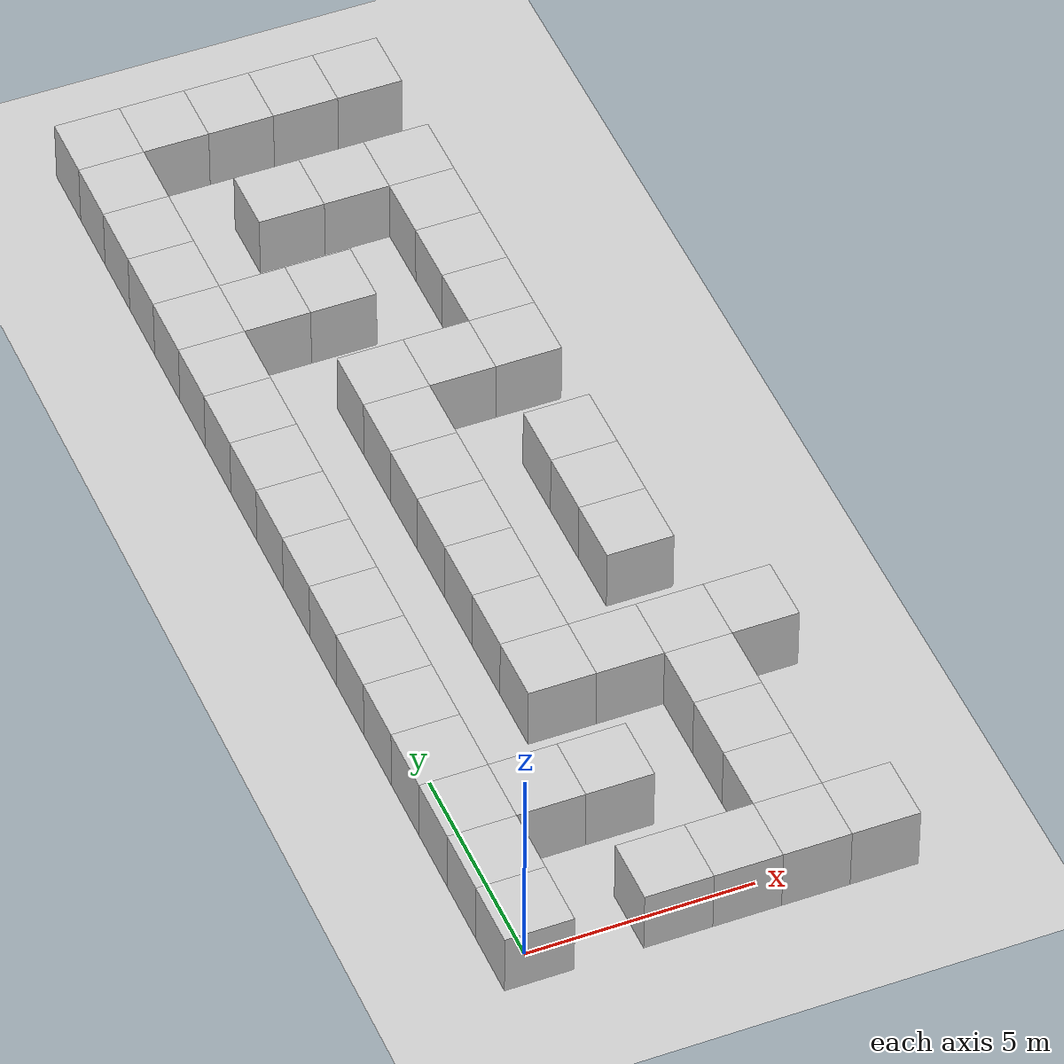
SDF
<sdf version="1.9">
 <world name="maze_world">
  <include><uri>https://fuel.gazebosim.org/1.0/OpenRobotics/models/Sun</uri></include>
  <include><uri>https://fuel.gazebosim.org/1.0/OpenRobotics/models/Ground Plane</uri></include>
  <model name="wall_0_0">
   <static>true</static>
   <pose>0 0 0.75 0 0 0</pose>
   <link name="link">
    <collision name="collision"><geometry><box><size>1.5 1.5 1.5</size></box></geometry></collision>
    <visual name="visual">
     <geometry><box><size>1.5 1.5 1.5</size></box></geometry>
     <material>
      <ambient>0.8 0.8 0.8 1</ambient>
      <diffuse>0.8 0.8 0.8 1</diffuse>
      <pbr>
       <metal>
        <albedo_map>file:///home/max/Repos/DHBW-Robotik/maze_runner_ws/src/maze_runner_gazebo/textures/simple_box.png</albedo_map>
        <roughness>0.9</roughness>
       </metal>
      </pbr>
     </material>
    </visual>
   </link>
  </model>
  <model name="wall_2_0">
   <static>true</static>
   <pose>3 0 0.75 0 0 0</pose>
   <link name="link">
    <collision name="collision"><geometry><box><size>1.5 1.5 1.5</size></box></geometry></collision>
    <visual name="visual">
     <geometry><box><size>1.5 1.5 1.5</size></box></geometry>
     <material>
      <ambient>0.8 0.8 0.8 1</ambient>
      <diffuse>0.8 0.8 0.8 1</diffuse>
      <pbr>
       <metal>
        <albedo_map>file:///home/max/Repos/DHBW-Robotik/maze_runner_ws/src/maze_runner_gazebo/textures/simple_box.png</albedo_map>
        <roughness>0.9</roughness>
       </metal>
      </pbr>
     </material>
    </visual>
   </link>
  </model>
  <model name="wall_3_0">
   <static>true</static>
   <pose>4.5 0 0.75 0 0 0</pose>
   <link name="link">
    <collision name="collision"><geometry><box><size>1.5 1.5 1.5</size></box></geometry></collision>
    <visual name="visual">
     <geometry><box><size>1.5 1.5 1.5</size></box></geometry>
     <material>
      <ambient>0.8 0.8 0.8 1</ambient>
      <diffuse>0.8 0.8 0.8 1</diffuse>
      <pbr>
       <metal>
        <albedo_map>file:///home/max/Repos/DHBW-Robotik/maze_runner_ws/src/maze_runner_gazebo/textures/simple_box.png</albedo_map>
        <roughness>0.9</roughness>
       </metal>
      </pbr>
     </material>
    </visual>
   </link>
  </model>
  <model name="wall_4_0">
   <static>true</static>
   <pose>6 0 0.75 0 0 0</pose>
   <link name="link">
    <collision name="collision"><geometry><box><size>1.5 1.5 1.5</size></box></geometry></collision>
    <visual name="visual">
     <geometry><box><size>1.5 1.5 1.5</size></box></geometry>
     <material>
      <ambient>0.8 0.8 0.8 1</ambient>
      <diffuse>0.8 0.8 0.8 1</diffuse>
      <pbr>
       <metal>
        <albedo_map>file:///home/max/Repos/DHBW-Robotik/maze_runner_ws/src/maze_runner_gazebo/textures/simple_box.png</albedo_map>
        <roughness>0.9</roughness>
       </metal>
      </pbr>
     </material>
    </visual>
   </link>
  </model>
  <model name="wall_5_0">
   <static>true</static>
   <pose>7.5 0 0.75 0 0 0</pose>
   <link name="link">
    <collision name="collision"><geometry><box><size>1.5 1.5 1.5</size></box></geometry></collision>
    <visual name="visual">
     <geometry><box><size>1.5 1.5 1.5</size></box></geometry>
     <material>
      <ambient>0.8 0.8 0.8 1</ambient>
      <diffuse>0.8 0.8 0.8 1</diffuse>
      <pbr>
       <metal>
        <albedo_map>file:///home/max/Repos/DHBW-Robotik/maze_runner_ws/src/maze_runner_gazebo/textures/simple_box.png</albedo_map>
        <roughness>0.9</roughness>
       </metal>
      </pbr>
     </material>
    </visual>
   </link>
  </model>
  <model name="wall_0_1">
   <static>true</static>
   <pose>0 1.5 0.75 0 0 0</pose>
   <link name="link">
    <collision name="collision"><geometry><box><size>1.5 1.5 1.5</size></box></geometry></collision>
    <visual name="visual">
     <geometry><box><size>1.5 1.5 1.5</size></box></geometry>
     <material>
      <ambient>0.8 0.8 0.8 1</ambient>
      <diffuse>0.8 0.8 0.8 1</diffuse>
      <pbr>
       <metal>
        <albedo_map>file:///home/max/Repos/DHBW-Robotik/maze_runner_ws/src/maze_runner_gazebo/textures/simple_box.png</albedo_map>
        <roughness>0.9</roughness>
       </metal>
      </pbr>
     </material>
    </visual>
   </link>
  </model>
  <model name="wall_4_1">
   <static>true</static>
   <pose>6 1.5 0.75 0 0 0</pose>
   <link name="link">
    <collision name="collision"><geometry><box><size>1.5 1.5 1.5</size></box></geometry></collision>
    <visual name="visual">
     <geometry><box><size>1.5 1.5 1.5</size></box></geometry>
     <material>
      <ambient>0.8 0.8 0.8 1</ambient>
      <diffuse>0.8 0.8 0.8 1</diffuse>
      <pbr>
       <metal>
        <albedo_map>file:///home/max/Repos/DHBW-Robotik/maze_runner_ws/src/maze_runner_gazebo/textures/simple_box.png</albedo_map>
        <roughness>0.9</roughness>
       </metal>
      </pbr>
     </material>
    </visual>
   </link>
  </model>
  <model name="wall_0_2">
   <static>true</static>
   <pose>0 3 0.75 0 0 0</pose>
   <link name="link">
    <collision name="collision"><geometry><box><size>1.5 1.5 1.5</size></box></geometry></collision>
    <visual name="visual">
     <geometry><box><size>1.5 1.5 1.5</size></box></geometry>
     <material>
      <ambient>0.8 0.8 0.8 1</ambient>
      <diffuse>0.8 0.8 0.8 1</diffuse>
      <pbr>
       <metal>
        <albedo_map>file:///home/max/Repos/DHBW-Robotik/maze_runner_ws/src/maze_runner_gazebo/textures/simple_box.png</albedo_map>
        <roughness>0.9</roughness>
       </metal>
      </pbr>
     </material>
    </visual>
   </link>
  </model>
  <model name="wall_1_2">
   <static>true</static>
   <pose>1.5 3 0.75 0 0 0</pose>
   <link name="link">
    <collision name="collision"><geometry><box><size>1.5 1.5 1.5</size></box></geometry></collision>
    <visual name="visual">
     <geometry><box><size>1.5 1.5 1.5</size></box></geometry>
     <material>
      <ambient>0.8 0.8 0.8 1</ambient>
      <diffuse>0.8 0.8 0.8 1</diffuse>
      <pbr>
       <metal>
        <albedo_map>file:///home/max/Repos/DHBW-Robotik/maze_runner_ws/src/maze_runner_gazebo/textures/simple_box.png</albedo_map>
        <roughness>0.9</roughness>
       </metal>
      </pbr>
     </material>
    </visual>
   </link>
  </model>
  <model name="wall_2_2">
   <static>true</static>
   <pose>3 3 0.75 0 0 0</pose>
   <link name="link">
    <collision name="collision"><geometry><box><size>1.5 1.5 1.5</size></box></geometry></collision>
    <visual name="visual">
     <geometry><box><size>1.5 1.5 1.5</size></box></geometry>
     <material>
      <ambient>0.8 0.8 0.8 1</ambient>
      <diffuse>0.8 0.8 0.8 1</diffuse>
      <pbr>
       <metal>
        <albedo_map>file:///home/max/Repos/DHBW-Robotik/maze_runner_ws/src/maze_runner_gazebo/textures/simple_box.png</albedo_map>
        <roughness>0.9</roughness>
       </metal>
      </pbr>
     </material>
    </visual>
   </link>
  </model>
  <model name="wall_4_2">
   <static>true</static>
   <pose>6 3 0.75 0 0 0</pose>
   <link name="link">
    <collision name="collision"><geometry><box><size>1.5 1.5 1.5</size></box></geometry></collision>
    <visual name="visual">
     <geometry><box><size>1.5 1.5 1.5</size></box></geometry>
     <material>
      <ambient>0.8 0.8 0.8 1</ambient>
      <diffuse>0.8 0.8 0.8 1</diffuse>
      <pbr>
       <metal>
        <albedo_map>file:///home/max/Repos/DHBW-Robotik/maze_runner_ws/src/maze_runner_gazebo/textures/simple_box.png</albedo_map>
        <roughness>0.9</roughness>
       </metal>
      </pbr>
     </material>
    </visual>
   </link>
  </model>
  <model name="wall_0_3">
   <static>true</static>
   <pose>0 4.5 0.75 0 0 0</pose>
   <link name="link">
    <collision name="collision"><geometry><box><size>1.5 1.5 1.5</size></box></geometry></collision>
    <visual name="visual">
     <geometry><box><size>1.5 1.5 1.5</size></box></geometry>
     <material>
      <ambient>0.8 0.8 0.8 1</ambient>
      <diffuse>0.8 0.8 0.8 1</diffuse>
      <pbr>
       <metal>
        <albedo_map>file:///home/max/Repos/DHBW-Robotik/maze_runner_ws/src/maze_runner_gazebo/textures/simple_box.png</albedo_map>
        <roughness>0.9</roughness>
       </metal>
      </pbr>
     </material>
    </visual>
   </link>
  </model>
  <model name="wall_4_3">
   <static>true</static>
   <pose>6 4.5 0.75 0 0 0</pose>
   <link name="link">
    <collision name="collision"><geometry><box><size>1.5 1.5 1.5</size></box></geometry></collision>
    <visual name="visual">
     <geometry><box><size>1.5 1.5 1.5</size></box></geometry>
     <material>
      <ambient>0.8 0.8 0.8 1</ambient>
      <diffuse>0.8 0.8 0.8 1</diffuse>
      <pbr>
       <metal>
        <albedo_map>file:///home/max/Repos/DHBW-Robotik/maze_runner_ws/src/maze_runner_gazebo/textures/simple_box.png</albedo_map>
        <roughness>0.9</roughness>
       </metal>
      </pbr>
     </material>
    </visual>
   </link>
  </model>
  <model name="wall_0_4">
   <static>true</static>
   <pose>0 6 0.75 0 0 0</pose>
   <link name="link">
    <collision name="collision"><geometry><box><size>1.5 1.5 1.5</size></box></geometry></collision>
    <visual name="visual">
     <geometry><box><size>1.5 1.5 1.5</size></box></geometry>
     <material>
      <ambient>0.8 0.8 0.8 1</ambient>
      <diffuse>0.8 0.8 0.8 1</diffuse>
      <pbr>
       <metal>
        <albedo_map>file:///home/max/Repos/DHBW-Robotik/maze_runner_ws/src/maze_runner_gazebo/textures/simple_box.png</albedo_map>
        <roughness>0.9</roughness>
       </metal>
      </pbr>
     </material>
    </visual>
   </link>
  </model>
  <model name="wall_2_4">
   <static>true</static>
   <pose>3 6 0.75 0 0 0</pose>
   <link name="link">
    <collision name="collision"><geometry><box><size>1.5 1.5 1.5</size></box></geometry></collision>
    <visual name="visual">
     <geometry><box><size>1.5 1.5 1.5</size></box></geometry>
     <material>
      <ambient>0.8 0.8 0.8 1</ambient>
      <diffuse>0.8 0.8 0.8 1</diffuse>
      <pbr>
       <metal>
        <albedo_map>file:///home/max/Repos/DHBW-Robotik/maze_runner_ws/src/maze_runner_gazebo/textures/simple_box.png</albedo_map>
        <roughness>0.9</roughness>
       </metal>
      </pbr>
     </material>
    </visual>
   </link>
  </model>
  <model name="wall_3_4">
   <static>true</static>
   <pose>4.5 6 0.75 0 0 0</pose>
   <link name="link">
    <collision name="collision"><geometry><box><size>1.5 1.5 1.5</size></box></geometry></collision>
    <visual name="visual">
     <geometry><box><size>1.5 1.5 1.5</size></box></geometry>
     <material>
      <ambient>0.8 0.8 0.8 1</ambient>
      <diffuse>0.8 0.8 0.8 1</diffuse>
      <pbr>
       <metal>
        <albedo_map>file:///home/max/Repos/DHBW-Robotik/maze_runner_ws/src/maze_runner_gazebo/textures/simple_box.png</albedo_map>
        <roughness>0.9</roughness>
       </metal>
      </pbr>
     </material>
    </visual>
   </link>
  </model>
  <model name="wall_4_4">
   <static>true</static>
   <pose>6 6 0.75 0 0 0</pose>
   <link name="link">
    <collision name="collision"><geometry><box><size>1.5 1.5 1.5</size></box></geometry></collision>
    <visual name="visual">
     <geometry><box><size>1.5 1.5 1.5</size></box></geometry>
     <material>
      <ambient>0.8 0.8 0.8 1</ambient>
      <diffuse>0.8 0.8 0.8 1</diffuse>
      <pbr>
       <metal>
        <albedo_map>file:///home/max/Repos/DHBW-Robotik/maze_runner_ws/src/maze_runner_gazebo/textures/simple_box.png</albedo_map>
        <roughness>0.9</roughness>
       </metal>
      </pbr>
     </material>
    </visual>
   </link>
  </model>
  <model name="wall_5_4">
   <static>true</static>
   <pose>7.5 6 0.75 0 0 0</pose>
   <link name="link">
    <collision name="collision"><geometry><box><size>1.5 1.5 1.5</size></box></geometry></collision>
    <visual name="visual">
     <geometry><box><size>1.5 1.5 1.5</size></box></geometry>
     <material>
      <ambient>0.8 0.8 0.8 1</ambient>
      <diffuse>0.8 0.8 0.8 1</diffuse>
      <pbr>
       <metal>
        <albedo_map>file:///home/max/Repos/DHBW-Robotik/maze_runner_ws/src/maze_runner_gazebo/textures/simple_box.png</albedo_map>
        <roughness>0.9</roughness>
       </metal>
      </pbr>
     </material>
    </visual>
   </link>
  </model>
  <model name="wall_0_5">
   <static>true</static>
   <pose>0 7.5 0.75 0 0 0</pose>
   <link name="link">
    <collision name="collision"><geometry><box><size>1.5 1.5 1.5</size></box></geometry></collision>
    <visual name="visual">
     <geometry><box><size>1.5 1.5 1.5</size></box></geometry>
     <material>
      <ambient>0.8 0.8 0.8 1</ambient>
      <diffuse>0.8 0.8 0.8 1</diffuse>
      <pbr>
       <metal>
        <albedo_map>file:///home/max/Repos/DHBW-Robotik/maze_runner_ws/src/maze_runner_gazebo/textures/simple_box.png</albedo_map>
        <roughness>0.9</roughness>
       </metal>
      </pbr>
     </material>
    </visual>
   </link>
  </model>
  <model name="wall_2_5">
   <static>true</static>
   <pose>3 7.5 0.75 0 0 0</pose>
   <link name="link">
    <collision name="collision"><geometry><box><size>1.5 1.5 1.5</size></box></geometry></collision>
    <visual name="visual">
     <geometry><box><size>1.5 1.5 1.5</size></box></geometry>
     <material>
      <ambient>0.8 0.8 0.8 1</ambient>
      <diffuse>0.8 0.8 0.8 1</diffuse>
      <pbr>
       <metal>
        <albedo_map>file:///home/max/Repos/DHBW-Robotik/maze_runner_ws/src/maze_runner_gazebo/textures/simple_box.png</albedo_map>
        <roughness>0.9</roughness>
       </metal>
      </pbr>
     </material>
    </visual>
   </link>
  </model>
  <model name="wall_0_6">
   <static>true</static>
   <pose>0 9 0.75 0 0 0</pose>
   <link name="link">
    <collision name="collision"><geometry><box><size>1.5 1.5 1.5</size></box></geometry></collision>
    <visual name="visual">
     <geometry><box><size>1.5 1.5 1.5</size></box></geometry>
     <material>
      <ambient>0.8 0.8 0.8 1</ambient>
      <diffuse>0.8 0.8 0.8 1</diffuse>
      <pbr>
       <metal>
        <albedo_map>file:///home/max/Repos/DHBW-Robotik/maze_runner_ws/src/maze_runner_gazebo/textures/simple_box.png</albedo_map>
        <roughness>0.9</roughness>
       </metal>
      </pbr>
     </material>
    </visual>
   </link>
  </model>
  <model name="wall_2_6">
   <static>true</static>
   <pose>3 9 0.75 0 0 0</pose>
   <link name="link">
    <collision name="collision"><geometry><box><size>1.5 1.5 1.5</size></box></geometry></collision>
    <visual name="visual">
     <geometry><box><size>1.5 1.5 1.5</size></box></geometry>
     <material>
      <ambient>0.8 0.8 0.8 1</ambient>
      <diffuse>0.8 0.8 0.8 1</diffuse>
      <pbr>
       <metal>
        <albedo_map>file:///home/max/Repos/DHBW-Robotik/maze_runner_ws/src/maze_runner_gazebo/textures/simple_box.png</albedo_map>
        <roughness>0.9</roughness>
       </metal>
      </pbr>
     </material>
    </visual>
   </link>
  </model>
  <model name="wall_4_6">
   <static>true</static>
   <pose>6 9 0.75 0 0 0</pose>
   <link name="link">
    <collision name="collision"><geometry><box><size>1.5 1.5 1.5</size></box></geometry></collision>
    <visual name="visual">
     <geometry><box><size>1.5 1.5 1.5</size></box></geometry>
     <material>
      <ambient>0.8 0.8 0.8 1</ambient>
      <diffuse>0.8 0.8 0.8 1</diffuse>
      <pbr>
       <metal>
        <albedo_map>file:///home/max/Repos/DHBW-Robotik/maze_runner_ws/src/maze_runner_gazebo/textures/simple_box.png</albedo_map>
        <roughness>0.9</roughness>
       </metal>
      </pbr>
     </material>
    </visual>
   </link>
  </model>
  <model name="wall_0_7">
   <static>true</static>
   <pose>0 10.5 0.75 0 0 0</pose>
   <link name="link">
    <collision name="collision"><geometry><box><size>1.5 1.5 1.5</size></box></geometry></collision>
    <visual name="visual">
     <geometry><box><size>1.5 1.5 1.5</size></box></geometry>
     <material>
      <ambient>0.8 0.8 0.8 1</ambient>
      <diffuse>0.8 0.8 0.8 1</diffuse>
      <pbr>
       <metal>
        <albedo_map>file:///home/max/Repos/DHBW-Robotik/maze_runner_ws/src/maze_runner_gazebo/textures/simple_box.png</albedo_map>
        <roughness>0.9</roughness>
       </metal>
      </pbr>
     </material>
    </visual>
   </link>
  </model>
  <model name="wall_2_7">
   <static>true</static>
   <pose>3 10.5 0.75 0 0 0</pose>
   <link name="link">
    <collision name="collision"><geometry><box><size>1.5 1.5 1.5</size></box></geometry></collision>
    <visual name="visual">
     <geometry><box><size>1.5 1.5 1.5</size></box></geometry>
     <material>
      <ambient>0.8 0.8 0.8 1</ambient>
      <diffuse>0.8 0.8 0.8 1</diffuse>
      <pbr>
       <metal>
        <albedo_map>file:///home/max/Repos/DHBW-Robotik/maze_runner_ws/src/maze_runner_gazebo/textures/simple_box.png</albedo_map>
        <roughness>0.9</roughness>
       </metal>
      </pbr>
     </material>
    </visual>
   </link>
  </model>
  <model name="wall_4_7">
   <static>true</static>
   <pose>6 10.5 0.75 0 0 0</pose>
   <link name="link">
    <collision name="collision"><geometry><box><size>1.5 1.5 1.5</size></box></geometry></collision>
    <visual name="visual">
     <geometry><box><size>1.5 1.5 1.5</size></box></geometry>
     <material>
      <ambient>0.8 0.8 0.8 1</ambient>
      <diffuse>0.8 0.8 0.8 1</diffuse>
      <pbr>
       <metal>
        <albedo_map>file:///home/max/Repos/DHBW-Robotik/maze_runner_ws/src/maze_runner_gazebo/textures/simple_box.png</albedo_map>
        <roughness>0.9</roughness>
       </metal>
      </pbr>
     </material>
    </visual>
   </link>
  </model>
  <model name="wall_0_8">
   <static>true</static>
   <pose>0 12 0.75 0 0 0</pose>
   <link name="link">
    <collision name="collision"><geometry><box><size>1.5 1.5 1.5</size></box></geometry></collision>
    <visual name="visual">
     <geometry><box><size>1.5 1.5 1.5</size></box></geometry>
     <material>
      <ambient>0.8 0.8 0.8 1</ambient>
      <diffuse>0.8 0.8 0.8 1</diffuse>
      <pbr>
       <metal>
        <albedo_map>file:///home/max/Repos/DHBW-Robotik/maze_runner_ws/src/maze_runner_gazebo/textures/simple_box.png</albedo_map>
        <roughness>0.9</roughness>
       </metal>
      </pbr>
     </material>
    </visual>
   </link>
  </model>
  <model name="wall_2_8">
   <static>true</static>
   <pose>3 12 0.75 0 0 0</pose>
   <link name="link">
    <collision name="collision"><geometry><box><size>1.5 1.5 1.5</size></box></geometry></collision>
    <visual name="visual">
     <geometry><box><size>1.5 1.5 1.5</size></box></geometry>
     <material>
      <ambient>0.8 0.8 0.8 1</ambient>
      <diffuse>0.8 0.8 0.8 1</diffuse>
      <pbr>
       <metal>
        <albedo_map>file:///home/max/Repos/DHBW-Robotik/maze_runner_ws/src/maze_runner_gazebo/textures/simple_box.png</albedo_map>
        <roughness>0.9</roughness>
       </metal>
      </pbr>
     </material>
    </visual>
   </link>
  </model>
  <model name="wall_4_8">
   <static>true</static>
   <pose>6 12 0.75 0 0 0</pose>
   <link name="link">
    <collision name="collision"><geometry><box><size>1.5 1.5 1.5</size></box></geometry></collision>
    <visual name="visual">
     <geometry><box><size>1.5 1.5 1.5</size></box></geometry>
     <material>
      <ambient>0.8 0.8 0.8 1</ambient>
      <diffuse>0.8 0.8 0.8 1</diffuse>
      <pbr>
       <metal>
        <albedo_map>file:///home/max/Repos/DHBW-Robotik/maze_runner_ws/src/maze_runner_gazebo/textures/simple_box.png</albedo_map>
        <roughness>0.9</roughness>
       </metal>
      </pbr>
     </material>
    </visual>
   </link>
  </model>
  <model name="wall_0_9">
   <static>true</static>
   <pose>0 13.5 0.75 0 0 0</pose>
   <link name="link">
    <collision name="collision"><geometry><box><size>1.5 1.5 1.5</size></box></geometry></collision>
    <visual name="visual">
     <geometry><box><size>1.5 1.5 1.5</size></box></geometry>
     <material>
      <ambient>0.8 0.8 0.8 1</ambient>
      <diffuse>0.8 0.8 0.8 1</diffuse>
      <pbr>
       <metal>
        <albedo_map>file:///home/max/Repos/DHBW-Robotik/maze_runner_ws/src/maze_runner_gazebo/textures/simple_box.png</albedo_map>
        <roughness>0.9</roughness>
       </metal>
      </pbr>
     </material>
    </visual>
   </link>
  </model>
  <model name="wall_2_9">
   <static>true</static>
   <pose>3 13.5 0.75 0 0 0</pose>
   <link name="link">
    <collision name="collision"><geometry><box><size>1.5 1.5 1.5</size></box></geometry></collision>
    <visual name="visual">
     <geometry><box><size>1.5 1.5 1.5</size></box></geometry>
     <material>
      <ambient>0.8 0.8 0.8 1</ambient>
      <diffuse>0.8 0.8 0.8 1</diffuse>
      <pbr>
       <metal>
        <albedo_map>file:///home/max/Repos/DHBW-Robotik/maze_runner_ws/src/maze_runner_gazebo/textures/simple_box.png</albedo_map>
        <roughness>0.9</roughness>
       </metal>
      </pbr>
     </material>
    </visual>
   </link>
  </model>
  <model name="wall_0_10">
   <static>true</static>
   <pose>0 15 0.75 0 0 0</pose>
   <link name="link">
    <collision name="collision"><geometry><box><size>1.5 1.5 1.5</size></box></geometry></collision>
    <visual name="visual">
     <geometry><box><size>1.5 1.5 1.5</size></box></geometry>
     <material>
      <ambient>0.8 0.8 0.8 1</ambient>
      <diffuse>0.8 0.8 0.8 1</diffuse>
      <pbr>
       <metal>
        <albedo_map>file:///home/max/Repos/DHBW-Robotik/maze_runner_ws/src/maze_runner_gazebo/textures/simple_box.png</albedo_map>
        <roughness>0.9</roughness>
       </metal>
      </pbr>
     </material>
    </visual>
   </link>
  </model>
  <model name="wall_2_10">
   <static>true</static>
   <pose>3 15 0.75 0 0 0</pose>
   <link name="link">
    <collision name="collision"><geometry><box><size>1.5 1.5 1.5</size></box></geometry></collision>
    <visual name="visual">
     <geometry><box><size>1.5 1.5 1.5</size></box></geometry>
     <material>
      <ambient>0.8 0.8 0.8 1</ambient>
      <diffuse>0.8 0.8 0.8 1</diffuse>
      <pbr>
       <metal>
        <albedo_map>file:///home/max/Repos/DHBW-Robotik/maze_runner_ws/src/maze_runner_gazebo/textures/simple_box.png</albedo_map>
        <roughness>0.9</roughness>
       </metal>
      </pbr>
     </material>
    </visual>
   </link>
  </model>
  <model name="wall_3_10">
   <static>true</static>
   <pose>4.5 15 0.75 0 0 0</pose>
   <link name="link">
    <collision name="collision"><geometry><box><size>1.5 1.5 1.5</size></box></geometry></collision>
    <visual name="visual">
     <geometry><box><size>1.5 1.5 1.5</size></box></geometry>
     <material>
      <ambient>0.8 0.8 0.8 1</ambient>
      <diffuse>0.8 0.8 0.8 1</diffuse>
      <pbr>
       <metal>
        <albedo_map>file:///home/max/Repos/DHBW-Robotik/maze_runner_ws/src/maze_runner_gazebo/textures/simple_box.png</albedo_map>
        <roughness>0.9</roughness>
       </metal>
      </pbr>
     </material>
    </visual>
   </link>
  </model>
  <model name="wall_4_10">
   <static>true</static>
   <pose>6 15 0.75 0 0 0</pose>
   <link name="link">
    <collision name="collision"><geometry><box><size>1.5 1.5 1.5</size></box></geometry></collision>
    <visual name="visual">
     <geometry><box><size>1.5 1.5 1.5</size></box></geometry>
     <material>
      <ambient>0.8 0.8 0.8 1</ambient>
      <diffuse>0.8 0.8 0.8 1</diffuse>
      <pbr>
       <metal>
        <albedo_map>file:///home/max/Repos/DHBW-Robotik/maze_runner_ws/src/maze_runner_gazebo/textures/simple_box.png</albedo_map>
        <roughness>0.9</roughness>
       </metal>
      </pbr>
     </material>
    </visual>
   </link>
  </model>
  <model name="wall_0_11">
   <static>true</static>
   <pose>0 16.5 0.75 0 0 0</pose>
   <link name="link">
    <collision name="collision"><geometry><box><size>1.5 1.5 1.5</size></box></geometry></collision>
    <visual name="visual">
     <geometry><box><size>1.5 1.5 1.5</size></box></geometry>
     <material>
      <ambient>0.8 0.8 0.8 1</ambient>
      <diffuse>0.8 0.8 0.8 1</diffuse>
      <pbr>
       <metal>
        <albedo_map>file:///home/max/Repos/DHBW-Robotik/maze_runner_ws/src/maze_runner_gazebo/textures/simple_box.png</albedo_map>
        <roughness>0.9</roughness>
       </metal>
      </pbr>
     </material>
    </visual>
   </link>
  </model>
  <model name="wall_4_11">
   <static>true</static>
   <pose>6 16.5 0.75 0 0 0</pose>
   <link name="link">
    <collision name="collision"><geometry><box><size>1.5 1.5 1.5</size></box></geometry></collision>
    <visual name="visual">
     <geometry><box><size>1.5 1.5 1.5</size></box></geometry>
     <material>
      <ambient>0.8 0.8 0.8 1</ambient>
      <diffuse>0.8 0.8 0.8 1</diffuse>
      <pbr>
       <metal>
        <albedo_map>file:///home/max/Repos/DHBW-Robotik/maze_runner_ws/src/maze_runner_gazebo/textures/simple_box.png</albedo_map>
        <roughness>0.9</roughness>
       </metal>
      </pbr>
     </material>
    </visual>
   </link>
  </model>
  <model name="wall_0_12">
   <static>true</static>
   <pose>0 18 0.75 0 0 0</pose>
   <link name="link">
    <collision name="collision"><geometry><box><size>1.5 1.5 1.5</size></box></geometry></collision>
    <visual name="visual">
     <geometry><box><size>1.5 1.5 1.5</size></box></geometry>
     <material>
      <ambient>0.8 0.8 0.8 1</ambient>
      <diffuse>0.8 0.8 0.8 1</diffuse>
      <pbr>
       <metal>
        <albedo_map>file:///home/max/Repos/DHBW-Robotik/maze_runner_ws/src/maze_runner_gazebo/textures/simple_box.png</albedo_map>
        <roughness>0.9</roughness>
       </metal>
      </pbr>
     </material>
    </visual>
   </link>
  </model>
  <model name="wall_1_12">
   <static>true</static>
   <pose>1.5 18 0.75 0 0 0</pose>
   <link name="link">
    <collision name="collision"><geometry><box><size>1.5 1.5 1.5</size></box></geometry></collision>
    <visual name="visual">
     <geometry><box><size>1.5 1.5 1.5</size></box></geometry>
     <material>
      <ambient>0.8 0.8 0.8 1</ambient>
      <diffuse>0.8 0.8 0.8 1</diffuse>
      <pbr>
       <metal>
        <albedo_map>file:///home/max/Repos/DHBW-Robotik/maze_runner_ws/src/maze_runner_gazebo/textures/simple_box.png</albedo_map>
        <roughness>0.9</roughness>
       </metal>
      </pbr>
     </material>
    </visual>
   </link>
  </model>
  <model name="wall_2_12">
   <static>true</static>
   <pose>3 18 0.75 0 0 0</pose>
   <link name="link">
    <collision name="collision"><geometry><box><size>1.5 1.5 1.5</size></box></geometry></collision>
    <visual name="visual">
     <geometry><box><size>1.5 1.5 1.5</size></box></geometry>
     <material>
      <ambient>0.8 0.8 0.8 1</ambient>
      <diffuse>0.8 0.8 0.8 1</diffuse>
      <pbr>
       <metal>
        <albedo_map>file:///home/max/Repos/DHBW-Robotik/maze_runner_ws/src/maze_runner_gazebo/textures/simple_box.png</albedo_map>
        <roughness>0.9</roughness>
       </metal>
      </pbr>
     </material>
    </visual>
   </link>
  </model>
  <model name="wall_4_12">
   <static>true</static>
   <pose>6 18 0.75 0 0 0</pose>
   <link name="link">
    <collision name="collision"><geometry><box><size>1.5 1.5 1.5</size></box></geometry></collision>
    <visual name="visual">
     <geometry><box><size>1.5 1.5 1.5</size></box></geometry>
     <material>
      <ambient>0.8 0.8 0.8 1</ambient>
      <diffuse>0.8 0.8 0.8 1</diffuse>
      <pbr>
       <metal>
        <albedo_map>file:///home/max/Repos/DHBW-Robotik/maze_runner_ws/src/maze_runner_gazebo/textures/simple_box.png</albedo_map>
        <roughness>0.9</roughness>
       </metal>
      </pbr>
     </material>
    </visual>
   </link>
  </model>
  <model name="wall_0_13">
   <static>true</static>
   <pose>0 19.5 0.75 0 0 0</pose>
   <link name="link">
    <collision name="collision"><geometry><box><size>1.5 1.5 1.5</size></box></geometry></collision>
    <visual name="visual">
     <geometry><box><size>1.5 1.5 1.5</size></box></geometry>
     <material>
      <ambient>0.8 0.8 0.8 1</ambient>
      <diffuse>0.8 0.8 0.8 1</diffuse>
      <pbr>
       <metal>
        <albedo_map>file:///home/max/Repos/DHBW-Robotik/maze_runner_ws/src/maze_runner_gazebo/textures/simple_box.png</albedo_map>
        <roughness>0.9</roughness>
       </metal>
      </pbr>
     </material>
    </visual>
   </link>
  </model>
  <model name="wall_4_13">
   <static>true</static>
   <pose>6 19.5 0.75 0 0 0</pose>
   <link name="link">
    <collision name="collision"><geometry><box><size>1.5 1.5 1.5</size></box></geometry></collision>
    <visual name="visual">
     <geometry><box><size>1.5 1.5 1.5</size></box></geometry>
     <material>
      <ambient>0.8 0.8 0.8 1</ambient>
      <diffuse>0.8 0.8 0.8 1</diffuse>
      <pbr>
       <metal>
        <albedo_map>file:///home/max/Repos/DHBW-Robotik/maze_runner_ws/src/maze_runner_gazebo/textures/simple_box.png</albedo_map>
        <roughness>0.9</roughness>
       </metal>
      </pbr>
     </material>
    </visual>
   </link>
  </model>
  <model name="wall_0_14">
   <static>true</static>
   <pose>0 21 0.75 0 0 0</pose>
   <link name="link">
    <collision name="collision"><geometry><box><size>1.5 1.5 1.5</size></box></geometry></collision>
    <visual name="visual">
     <geometry><box><size>1.5 1.5 1.5</size></box></geometry>
     <material>
      <ambient>0.8 0.8 0.8 1</ambient>
      <diffuse>0.8 0.8 0.8 1</diffuse>
      <pbr>
       <metal>
        <albedo_map>file:///home/max/Repos/DHBW-Robotik/maze_runner_ws/src/maze_runner_gazebo/textures/simple_box.png</albedo_map>
        <roughness>0.9</roughness>
       </metal>
      </pbr>
     </material>
    </visual>
   </link>
  </model>
  <model name="wall_2_14">
   <static>true</static>
   <pose>3 21 0.75 0 0 0</pose>
   <link name="link">
    <collision name="collision"><geometry><box><size>1.5 1.5 1.5</size></box></geometry></collision>
    <visual name="visual">
     <geometry><box><size>1.5 1.5 1.5</size></box></geometry>
     <material>
      <ambient>0.8 0.8 0.8 1</ambient>
      <diffuse>0.8 0.8 0.8 1</diffuse>
      <pbr>
       <metal>
        <albedo_map>file:///home/max/Repos/DHBW-Robotik/maze_runner_ws/src/maze_runner_gazebo/textures/simple_box.png</albedo_map>
        <roughness>0.9</roughness>
       </metal>
      </pbr>
     </material>
    </visual>
   </link>
  </model>
  <model name="wall_3_14">
   <static>true</static>
   <pose>4.5 21 0.75 0 0 0</pose>
   <link name="link">
    <collision name="collision"><geometry><box><size>1.5 1.5 1.5</size></box></geometry></collision>
    <visual name="visual">
     <geometry><box><size>1.5 1.5 1.5</size></box></geometry>
     <material>
      <ambient>0.8 0.8 0.8 1</ambient>
      <diffuse>0.8 0.8 0.8 1</diffuse>
      <pbr>
       <metal>
        <albedo_map>file:///home/max/Repos/DHBW-Robotik/maze_runner_ws/src/maze_runner_gazebo/textures/simple_box.png</albedo_map>
        <roughness>0.9</roughness>
       </metal>
      </pbr>
     </material>
    </visual>
   </link>
  </model>
  <model name="wall_4_14">
   <static>true</static>
   <pose>6 21 0.75 0 0 0</pose>
   <link name="link">
    <collision name="collision"><geometry><box><size>1.5 1.5 1.5</size></box></geometry></collision>
    <visual name="visual">
     <geometry><box><size>1.5 1.5 1.5</size></box></geometry>
     <material>
      <ambient>0.8 0.8 0.8 1</ambient>
      <diffuse>0.8 0.8 0.8 1</diffuse>
      <pbr>
       <metal>
        <albedo_map>file:///home/max/Repos/DHBW-Robotik/maze_runner_ws/src/maze_runner_gazebo/textures/simple_box.png</albedo_map>
        <roughness>0.9</roughness>
       </metal>
      </pbr>
     </material>
    </visual>
   </link>
  </model>
  <model name="wall_0_15">
   <static>true</static>
   <pose>0 22.5 0.75 0 0 0</pose>
   <link name="link">
    <collision name="collision"><geometry><box><size>1.5 1.5 1.5</size></box></geometry></collision>
    <visual name="visual">
     <geometry><box><size>1.5 1.5 1.5</size></box></geometry>
     <material>
      <ambient>0.8 0.8 0.8 1</ambient>
      <diffuse>0.8 0.8 0.8 1</diffuse>
      <pbr>
       <metal>
        <albedo_map>file:///home/max/Repos/DHBW-Robotik/maze_runner_ws/src/maze_runner_gazebo/textures/simple_box.png</albedo_map>
        <roughness>0.9</roughness>
       </metal>
      </pbr>
     </material>
    </visual>
   </link>
  </model>
  <model name="wall_0_16">
   <static>true</static>
   <pose>0 24 0.75 0 0 0</pose>
   <link name="link">
    <collision name="collision"><geometry><box><size>1.5 1.5 1.5</size></box></geometry></collision>
    <visual name="visual">
     <geometry><box><size>1.5 1.5 1.5</size></box></geometry>
     <material>
      <ambient>0.8 0.8 0.8 1</ambient>
      <diffuse>0.8 0.8 0.8 1</diffuse>
      <pbr>
       <metal>
        <albedo_map>file:///home/max/Repos/DHBW-Robotik/maze_runner_ws/src/maze_runner_gazebo/textures/simple_box.png</albedo_map>
        <roughness>0.9</roughness>
       </metal>
      </pbr>
     </material>
    </visual>
   </link>
  </model>
  <model name="wall_1_16">
   <static>true</static>
   <pose>1.5 24 0.75 0 0 0</pose>
   <link name="link">
    <collision name="collision"><geometry><box><size>1.5 1.5 1.5</size></box></geometry></collision>
    <visual name="visual">
     <geometry><box><size>1.5 1.5 1.5</size></box></geometry>
     <material>
      <ambient>0.8 0.8 0.8 1</ambient>
      <diffuse>0.8 0.8 0.8 1</diffuse>
      <pbr>
       <metal>
        <albedo_map>file:///home/max/Repos/DHBW-Robotik/maze_runner_ws/src/maze_runner_gazebo/textures/simple_box.png</albedo_map>
        <roughness>0.9</roughness>
       </metal>
      </pbr>
     </material>
    </visual>
   </link>
  </model>
  <model name="wall_2_16">
   <static>true</static>
   <pose>3 24 0.75 0 0 0</pose>
   <link name="link">
    <collision name="collision"><geometry><box><size>1.5 1.5 1.5</size></box></geometry></collision>
    <visual name="visual">
     <geometry><box><size>1.5 1.5 1.5</size></box></geometry>
     <material>
      <ambient>0.8 0.8 0.8 1</ambient>
      <diffuse>0.8 0.8 0.8 1</diffuse>
      <pbr>
       <metal>
        <albedo_map>file:///home/max/Repos/DHBW-Robotik/maze_runner_ws/src/maze_runner_gazebo/textures/simple_box.png</albedo_map>
        <roughness>0.9</roughness>
       </metal>
      </pbr>
     </material>
    </visual>
   </link>
  </model>
  <model name="wall_3_16">
   <static>true</static>
   <pose>4.5 24 0.75 0 0 0</pose>
   <link name="link">
    <collision name="collision"><geometry><box><size>1.5 1.5 1.5</size></box></geometry></collision>
    <visual name="visual">
     <geometry><box><size>1.5 1.5 1.5</size></box></geometry>
     <material>
      <ambient>0.8 0.8 0.8 1</ambient>
      <diffuse>0.8 0.8 0.8 1</diffuse>
      <pbr>
       <metal>
        <albedo_map>file:///home/max/Repos/DHBW-Robotik/maze_runner_ws/src/maze_runner_gazebo/textures/simple_box.png</albedo_map>
        <roughness>0.9</roughness>
       </metal>
      </pbr>
     </material>
    </visual>
   </link>
  </model>
  <model name="wall_4_16">
   <static>true</static>
   <pose>6 24 0.75 0 0 0</pose>
   <link name="link">
    <collision name="collision"><geometry><box><size>1.5 1.5 1.5</size></box></geometry></collision>
    <visual name="visual">
     <geometry><box><size>1.5 1.5 1.5</size></box></geometry>
     <material>
      <ambient>0.8 0.8 0.8 1</ambient>
      <diffuse>0.8 0.8 0.8 1</diffuse>
      <pbr>
       <metal>
        <albedo_map>file:///home/max/Repos/DHBW-Robotik/maze_runner_ws/src/maze_runner_gazebo/textures/simple_box.png</albedo_map>
        <roughness>0.9</roughness>
       </metal>
      </pbr>
     </material>
    </visual>
   </link>
  </model>
 </world>
</sdf>
